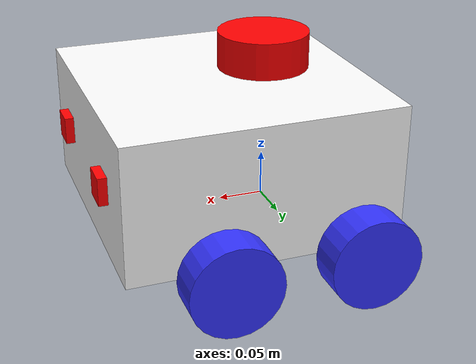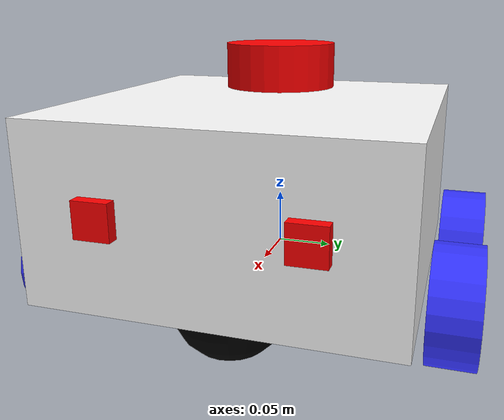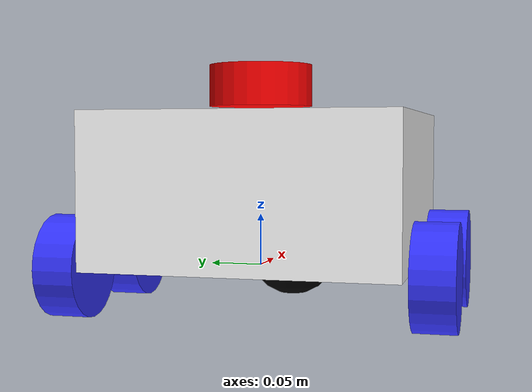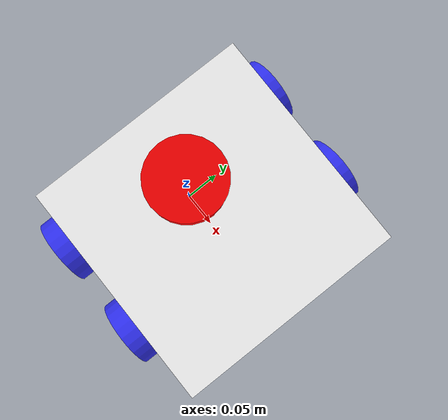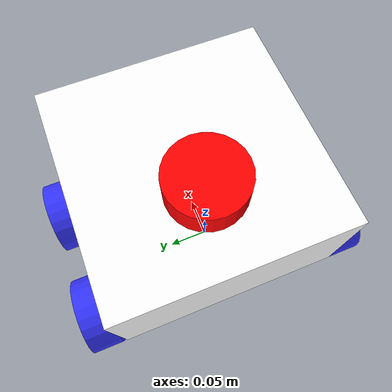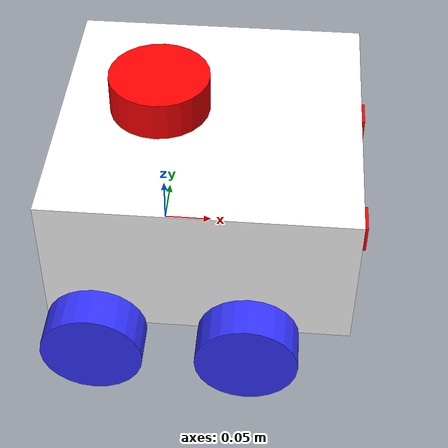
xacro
<?xml version="1.0"?>
<robot xmlns:xacro="http://www.ros.org/wiki/xacro"  name="robot">

    <xacro:include filename="robot_core.xacro" />
    <xacro:include filename="camera1.xacro" />
    <xacro:include filename="IMU.xacro" />
    <xacro:include filename="camera2.xacro" />
    <xacro:include filename="lidar.xacro" />

</robot>

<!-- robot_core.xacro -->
<robot xmlns:xacro="http://www.ros.org/wiki/xacro" >

    <xacro:include filename="inertial_macros.xacro"/>

    <material name="white">
        <color rgba="1 1 1 1" />
    </material>

    <material name="orange">
        <color rgba="1 0.3 0.1 1"/>
    </material>

    <material name="blue">
        <color rgba="0.2 0.2 1 1"/>
    </material>

    <material name="black">
        <color rgba="0 0 0 1"/>
    </material>
    <material name="red">
        <color rgba="1 0 0 1"/>
    </material>
    <!-- BASE LINK -->

    <link name="base_link">

    </link>

    <!-- CHASSIS LINK -->

    <joint name="chassis_joint" type="fixed">
        <parent link="base_link"/>
        <child link="chassis"/>
        <origin xyz="-0.1 0 0"/>
    </joint>

    <link name="chassis">
        <visual>
            <origin xyz="0.15 0 0.075"/>
            <geometry>
                <box size="0.3 0.3 0.15"/>
            </geometry>
            <material name="white"/>
        </visual>
        <collision>
            <origin xyz="0.15 0 0.075"/>
            <geometry>
                <box size="0.3 0.3 0.15"/>
            </geometry>
        </collision>
        <xacro:inertial_box mass="0.5" x="0.3" y="0.3" z="0.15">
            <origin xyz="0.15 0 0.075" rpy="0 0 0"/>
        </xacro:inertial_box>
    </link>

    <!-- LEFT WHEEL LINK BACK-->

    <joint name="left_wheel_joint" type="continuous">
        <parent link="base_link"/>
        <child link="left_wheel"/>
        <origin xyz="-0.050 0.175 0" rpy="-${pi/2} 0 0" />
        <axis xyz="0 0 1"/>
    </joint>

    <link name="left_wheel">
        <visual>
            <geometry>
                <cylinder radius="0.05" length="0.04"/>
            </geometry>
            <material name="blue"/>
        </visual>
        <collision>
            <geometry>
                <cylinder radius="0.05" length="0.04"/>
            </geometry>
        </collision>
        <xacro:inertial_cylinder mass="0.1" length="0.04" radius="0.05">
            <origin xyz="0 0 0" rpy="0 0 0"/>
        </xacro:inertial_cylinder>
    </link>

    <!-- RIGHT WHEEL LINK -->

    <joint name="right_wheel_joint" type="continuous">
        <parent link="base_link"/>
        <child link="right_wheel"/>
        <origin xyz="-0.050 -0.175 0" rpy="${pi/2} 0 0" />
        <axis xyz="0 0 -1"/>
    </joint>

    <link name="right_wheel">
        <visual>
            <geometry>
                <cylinder radius="0.05" length="0.04"/>
            </geometry>
            <material name="blue"/>
        </visual>
        <collision>
            <geometry>
                <cylinder radius="0.05" length="0.04"/>
            </geometry>
        </collision>
        <xacro:inertial_cylinder mass="0.1" length="0.04" radius="0.05">
            <origin xyz="0 0 0" rpy="0 0 0"/>
        </xacro:inertial_cylinder>
    </link>

      <!-- AJOUT 4 ROUE -->
    <!-- LEFT WHEEL LINK FRONT-->

    <joint name="right_wheel_front_joint" type="continuous">
        <parent link="base_link"/>
        <child link="right_wheel_front"/>
        <origin xyz="0.100 -0.175 0" rpy="${pi/2} 0 0" />
        <axis xyz="0 0 -1"/>
    </joint>

    <link name="right_wheel_front">
        <visual>
            <geometry>
                <cylinder radius="0.05" length="0.04"/>
            </geometry>
            <material name="blue"/>
        </visual>
        <collision>
            <geometry>
                <cylinder radius="0.05" length="0.04"/>
            </geometry>
        </collision>
        <xacro:inertial_cylinder mass="0.1" length="0.04" radius="0.05">
            <origin xyz="0 0 0" rpy="0 0 0"/>
        </xacro:inertial_cylinder>
    </link>

    <joint name="left_wheel_front_joint" type="continuous">
        <parent link="base_link"/>
        <child link="left_wheel_front"/>
         <origin xyz="0.100 0.175 0" rpy="-${pi/2} 0 0" />
        <axis xyz="0 0 1"/>
    </joint>

    <link name="left_wheel_front">
        <visual>
            <geometry>
                <cylinder radius="0.05" length="0.04"/>
            </geometry>
            <material name="blue"/>
        </visual>
        <collision>
            <geometry>
                <cylinder radius="0.05" length="0.04"/>
            </geometry>
        </collision>
        <xacro:inertial_cylinder mass="0.1" length="0.04" radius="0.05">
            <origin xyz="0 0 0" rpy="0 0 0"/>
        </xacro:inertial_cylinder>
    </link>

    <!-- AJOUT 4 ROUE -->

    <!-- CASTER WHEEL LINK -->

    <joint name="caster_wheel_joint" type="fixed">
        <parent link="chassis"/>
        <child link="caster_wheel"/>
        <origin xyz="0.24 0 0"/>
    </joint>

    <link name="caster_wheel">
        <visual>
            <geometry>
                <sphere radius="0.05"/>
            </geometry>
            <material name="black"/>
        </visual>
        <collision>
            <geometry>
                <sphere radius="0.05"/>
            </geometry>
        </collision>
        <xacro:inertial_sphere mass="0.1" radius="0.05">
            <origin xyz="0 0 0" rpy="0 0 0"/>
        </xacro:inertial_sphere>
    </link>

</robot>

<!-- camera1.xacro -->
<robot xmlns:xacro="http://www.ros.org/wiki/xacro" >

    <joint name="camera_joint" type="fixed">
        <parent link="chassis"/>
        <child link="camera_link"/>
        <origin xyz="0.305 0.08 0.08" rpy="0 0 0"/>
    </joint>

    <link name="camera_link">
        <visual>
            <geometry>
                <box size="0.010 0.03 0.03"/>
            </geometry>
            <material name="red"/>
        </visual>
    </link>

    <joint name="camera_optical_joint" type="fixed">
        <parent link="camera_link"/>
        <child link="camera_link_optical"/>
        <origin xyz="0 0 0" rpy="${-pi/2} 0 ${-pi/2}"/>
    </joint>

    <link name="camera_link_optical"></link>

    <gazebo reference="camera_link">
        <material>Gazebo/Red</material>

        <sensor name="camera" type="camera">
            <pose> 0 0 0 0 0 0 </pose>
            <visualize>true</visualize>
            <update_rate>10</update_rate>
            <camera>
                <horizontal_fov>1.089</horizontal_fov>
                <image>
                    <format>R8G8B8</format>
                    <width>640</width>
                    <height>480</height>
                </image>
                <clip>
                    <near>0.05</near>
                    <far>8.0</far>
                </clip>
            </camera>
            <plugin name="camera_controller" filename="libgazebo_ros_camera.so">
                <frame_name>camera_link_optical</frame_name>
            </plugin>
        </sensor>
    </gazebo>

</robot>

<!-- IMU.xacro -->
<robot xmlns:xacro="http://www.ros.org/wiki/xacro" >

    <joint name="imu_joint" type="fixed">
        <parent link="chassis"/>
        <child link="imu_link"/>
        <origin xyz="0.1 0 0.02" rpy="0 0 0"/>
    </joint>

    <link name="imu_link">
        <visual>
            <geometry>
                <box size="0.03 0.03 0.01"/>
            </geometry>
            <material name="red"/>
        </visual>
    </link>

    <gazebo reference="imu_link">
        <gravity>true</gravity>
        <sensor name="imu_sensor" type="imu">

            <always_on>true</always_on>
            <update_rate>10</update_rate>
            <visualize>true</visualize>
            <topic>__default_topic__</topic>
            <plugin name="imu_plugin" filename="libgazebo_ros_imu_sensor.so" >
                <topicName>imu</topicName>
                <bodyName>imu_link</bodyName>

                <gaussianNoise>0.0</gaussianNoise>
                <xyzOffset>0 0 0</xyzOffset>
                <rpyOffset>0 0 0</rpyOffset>
                <frameName>imu_link</frameName>
                <initialOrientationAsReference>false</initialOrientationAsReference>
            </plugin>
            <pose>0 0 0 0 0 0</pose>
        </sensor>
    </gazebo>

</robot>

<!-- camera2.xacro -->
<robot xmlns:xacro="http://www.ros.org/wiki/xacro" >

    <joint name="camera2_joint" type="fixed">
        <parent link="chassis"/>
        <child link="camera2_link"/>
        <origin xyz="0.305 -0.08 0.08" rpy="0 0 0"/>
    </joint>

    <link name="camera2_link">
        <visual>
            <geometry>
                <box size="0.010 0.03 0.03"/>
            </geometry>
            <material name="red"/>
        </visual>
    </link>

    <joint name="camera2_optical_joint" type="fixed">
        <parent link="camera2_link"/>
        <child link="camera2_link_optical"/>
        <origin xyz="0 0 0" rpy="${-pi/2} 0 ${-pi/2}"/>
    </joint>

    <link name="camera2_link_optical"></link>

    <gazebo reference="camera2_link">
        <material>Gazebo/Red</material>

        <sensor name="camera2" type="camera">
            <pose> 0 0 0 0 0 0 </pose>
            <visualize>true</visualize>
            <update_rate>10</update_rate>
            <camera>
                <horizontal_fov>1.089</horizontal_fov>
                <image>
                    <format>R8G8B8</format>
                    <width>640</width>
                    <height>480</height>
                </image>
                <clip>
                    <near>0.05</near>
                    <far>8.0</far>
                </clip>
            </camera>
            <plugin name="camera2_controller" filename="libgazebo_ros_camera.so">
                <frame_name>camera_link_optical</frame_name>
            </plugin>
        </sensor>
    </gazebo>

</robot>

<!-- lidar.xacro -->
<robot xmlns:xacro="http://www.ros.org/wiki/xacro" >

    <joint name="laser_joint" type="fixed">
        <parent link="chassis"/>
        <child link="laser_frame"/>
        <origin xyz="0.1 0 0.175" rpy="0 0 0"/>
    </joint>

    <link name="laser_frame">
        <visual>
            <geometry>
                <cylinder radius="0.05" length="0.04"/>
            </geometry>
            <material name="red"/>
        </visual>
        <collision>
            <geometry>
                <cylinder radius="0.05" length="0.04"/>
            </geometry>
        </collision>
        <xacro:inertial_cylinder mass="0.1" length="0.04" radius="0.05">
            <origin xyz="0 0 0" rpy="0 0 0"/>
        </xacro:inertial_cylinder>
    </link>

    <gazebo reference="laser_frame">
        <sensor name="laser" type="ray">
            <pose> 0 0 0 0 0 0 </pose>
            <visualize>true</visualize>
            <update_rate>10</update_rate>
            <ray>
                <scan>
                    <horizontal>
                        <samples>360</samples>
                        <min_angle>-3.14</min_angle>
                        <max_angle>3.14</max_angle>
                    </horizontal>
                </scan>
                <range>
                    <min>0.3</min>
                    <max>12</max>
                </range>
            </ray>
            <plugin name="laser_controller" filename="libgazebo_ros_ray_sensor.so">
                <ros>
                    <argument>~/out:=scan</argument>
                </ros>
                <output_type>sensor_msgs/LaserScan</output_type>
                <frame_name>laser_frame</frame_name>
            </plugin>
        </sensor>
    </gazebo>

</robot>
